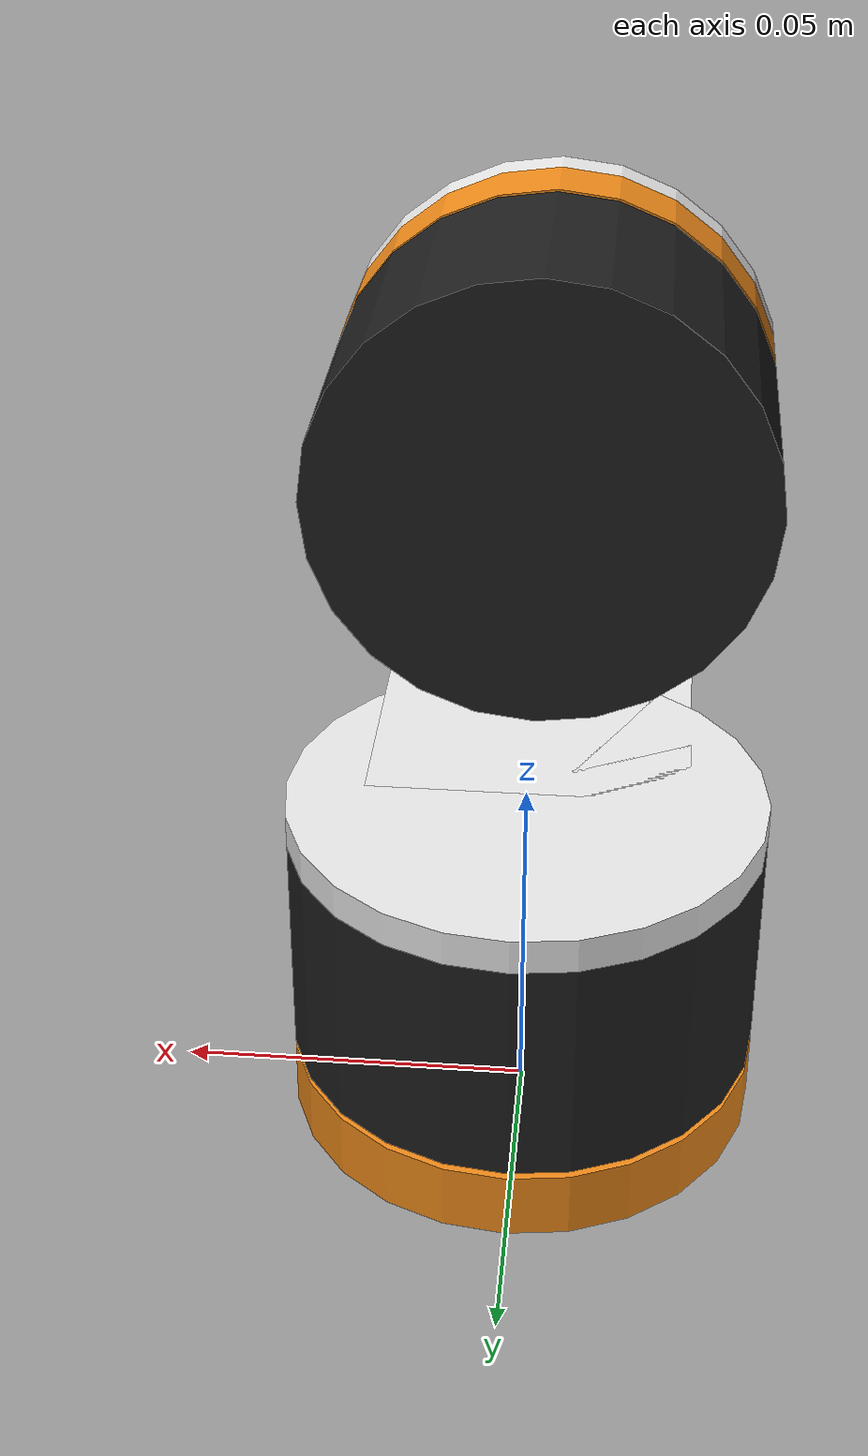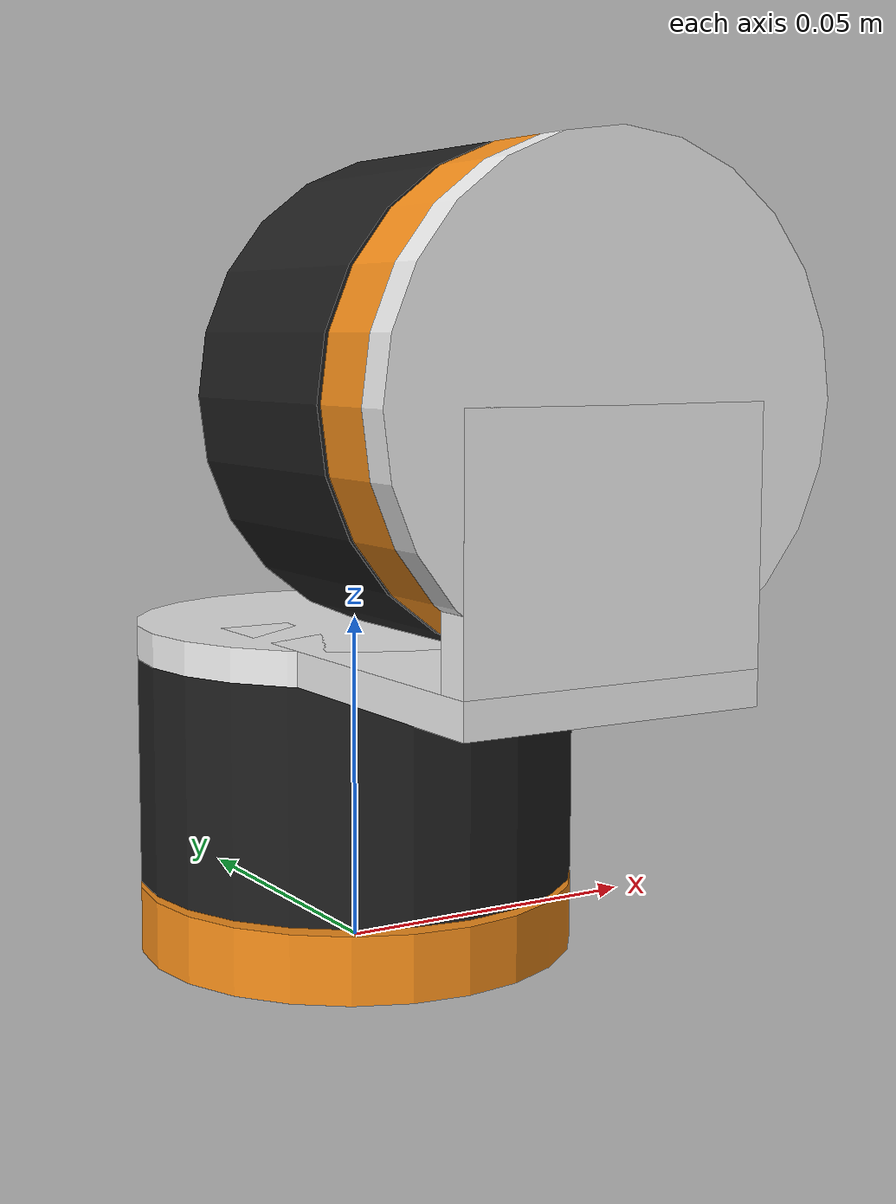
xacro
<?xml version='1.0'?>
<!-- Revolute-Revolute Manipulator -->
<robot name="blackfly" xmlns:xacro="http://www.ros.org/wiki/xacro">

<!-- Import all Gazebo-customization elements, including Gazebo colors -->
  <xacro:include filename="$(find blackfly_gimbal)/urdf/blackfly.gazebo" />
  <!-- Import Rviz colors -->
  <xacro:include filename="$(find blackfly_gimbal)/urdf/materials.xacro" />

  <!-- Used for fixing robot to Gazebo 'base_link' -->
  <link name="world"/>

<!-- Joint used to anchor robot to world via the stator portion of the pan-axis motor -->
  <joint name="anchor" type="fixed">
    <parent link="world"/>
    <child link="pan_motor_stator"/>
  </joint>

<!-- Link used to define the stator portion of the pan-axis motor-->
  <link name='pan_motor_stator'>
    <visual>
        <origin xyz="0 0 0.005" rpy="0 0 0"/>
        <geometry>
          <cylinder radius="0.03335" length="0.010"/>
        </geometry>
    </visual>
    <inertial>
        <origin xyz="0 0 0.005" rpy="0 0 0"/>
        <mass value="0.12398"/>
        <inertia ixx="0.00003572290"  ixy="0"  ixz="0" iyy="0.00003572290" iyz="0" izz="0.00006894558" />
    </inertial>
  </link>

<!-- Joint used to allow rotational motion about the z-axis of the pan-axis rotor about the z-axis of the pan-axis stator -->
  <joint name="pan_stator_to_rotor" type="revolute">
    <parent link="pan_motor_stator"/>
    <child link="pan_motor_rotor"/>
    <axis xyz="0 0 1"/>
    <limit lower="-1.5707" upper="1.5707" effort="30.0" velocity="200"/>
  </joint>

<!-- Link used to define the rotor portion of the pan-axis motor -->
  <link name="pan_motor_rotor">
    <inertial>
        <origin xyz="0 0 0.028" rpy="0 0 0"/>
        <mass value="0.3553"/>
        <inertia ixx="0.00014021408" ixy="0.00" ixz="0.00" iyy="0.00014021408" iyz="0.00" izz="0.00002197426" />
    </inertial>
    <visual>
        <origin xyz="0 0 0.028" rpy="0 0 0"/>
        <geometry>
            <cylinder radius="0.03335" length="0.034"/>
        </geometry>
    </visual>
  </link>

<!-- Joint used to fix the rotor portion of the pan-axis motor to the arm link -->
  <joint name="arm_to_pan" type="fixed">
    <parent link="pan_motor_rotor"/>
    <child link="arm"/>
  </joint>

<!-- Link used to define of the arm that joins the tilt and pan-axis motors -->
  <link name="arm">
      <inertial>
        <origin xyz="0 -0.03598 0.06231" rpy="0 0 0"/>
        <mass value=".05239"/>
        <inertia ixx="0.00007617354" ixy="0.00" ixz="0.00" iyy="0.000036508" iyz="-0.00002214887" izz="0.00006684559"/>
      </inertial>
    <!-- Cylindrical portion of the arm that sits on pan-axis motor -->
      <visual>
        <origin xyz="0 0 0.0475" rpy="0 0 0"/>
        <geometry>
            <cylinder radius="0.03335" length="0.005"/>
        </geometry>
      </visual>
    <!-- Boxed portion of the arm that extends from the pan-axis motor -->
      <visual>
        <origin xyz="0 -0.03352 0.0475" rpy="0 0 0"/>
        <geometry>
            <box size="0.045 0.06704 0.005"/>
        </geometry>
      </visual>
    <!-- Boxed portion of the arm that extends from the tilt-axis motor -->
      <visual>
        <origin xyz="0 -0.06454 0.06727" rpy="0 0 0"/>
        <geometry>
            <box size="0.045 0.005 0.03454"/>
        </geometry>
      </visual>
    <!-- Cylindrical portion of the arm that connects to base of tilt-axis motor -->
      <visual>
        <origin xyz="0 -0.06454 0.08454" rpy="-1.5707 0 0"/>
        <geometry>
            <cylinder radius="0.03335" length="0.005"/>
        </geometry>
      </visual>
    </link>
<!-- Joint used to fix the stator portion of the tilt-axis motor to the link arm -->
  <joint name="tilt_stator_to_arm" type="fixed">
    <parent link="arm"/>
    <child link="tilt_motor_stator"/>
  </joint>

<!-- Link used to define the stator portion of the tilt-axis motor -->
  <link name='tilt_motor_stator'>
    <inertial>
        <origin xyz="0 -0.05704 0.08454" rpy="-1.5707 0 0"/>
        <mass value="0.12398"/>
        <inertia ixx="0.00003572290"  ixy="0"  ixz="0" iyy="0.00003572290" iyz="0" izz="0.00006894558" />
    </inertial>
    <visual>
        <origin xyz="0 -0.05704 0.08454" rpy="-1.5707 0 0"/>
        <geometry>
            <cylinder radius="0.03335" length="0.010"/>
        </geometry>
    </visual>
  </link>

<!-- Joint used to allow rotational motion about the z-axis of the tilt-axis rotor about the z-axis of the tilt-axis stator -->
  <joint name="tilt_stator_to_rotor" type="revolute">
    <axis xyz="0 0 1"/>
    <parent link="tilt_motor_stator"/>
    <child link="tilt_motor_rotor"/>
    <limit lower="-1.5707" upper="1.5707" effort="30.0" velocity="200"/>
  </joint>

<!-- Link used to define the rotor portion of the tilt-axis motor -->
  <link name="tilt_motor_rotor">
      <inertial>
        <origin xyz="0 -0.03404 0.08454" rpy="-1.5707 -1.5707 0"/>
        <mass value="0.3553"/>
        <inertia ixx="0.00014021408" ixy="0.00" ixz="0.00" iyy="0.00014021408" iyz="0.00" izz="0.00002197426" />
      </inertial>

      <visual>
          <origin xyz="0 -0.03404 0.08454" rpy="-1.5707 -1.5707 0"/>
          <geometry>
              <cylinder radius="0.03335" length="0.034"/>
          </geometry>
      </visual>
  </link>

<!-- Pan-axis motor transmission element -->
  <transmission name="simple_trans">
    <type>transmission_interface/SimpleTransmission</type>
    <joint name="pan_stator_to_rotor">
      <hardwareInterface>hardware_interface/EffortJointInterface</hardwareInterface>
    </joint>
    <actuator name="PanBLDC">
      <mechanicalReduction>1</mechanicalReduction>
      <hardwareInterface>hardware_interface/EffortJointInterface</hardwareInterface>
    </actuator>
  </transmission>

<!-- Tilt-axis motor transmission element -->
  <transmission name="simple_trans">
    <type>transmission_interface/SimpleTransmission</type>
    <joint name="tilt_stator_to_rotor">
      <hardwareInterface>hardware_interface/EffortJointInterface</hardwareInterface>
    </joint>
    <actuator name="PanBLDC">
      <mechanicalReduction>1</mechanicalReduction>
      <hardwareInterface>hardware_interface/EffortJointInterface</hardwareInterface>
    </actuator>
  </transmission>
</robot>
